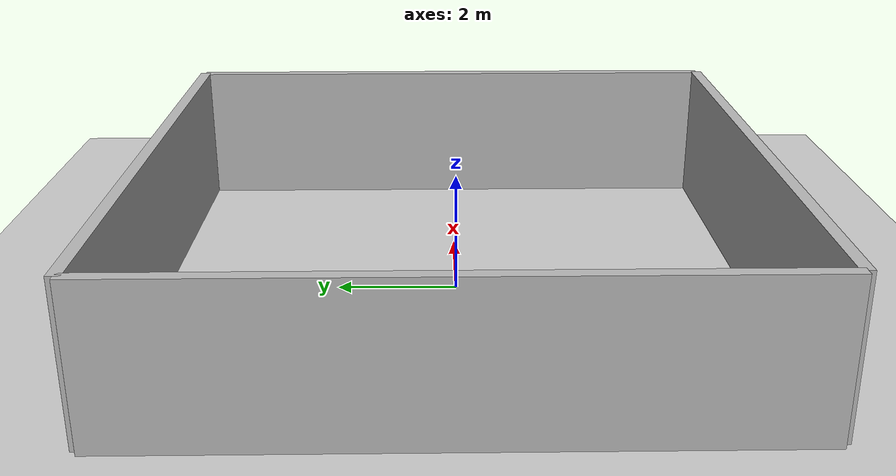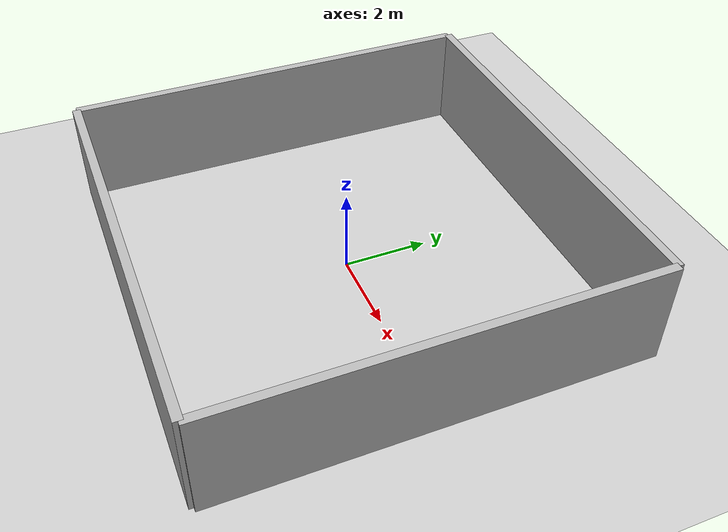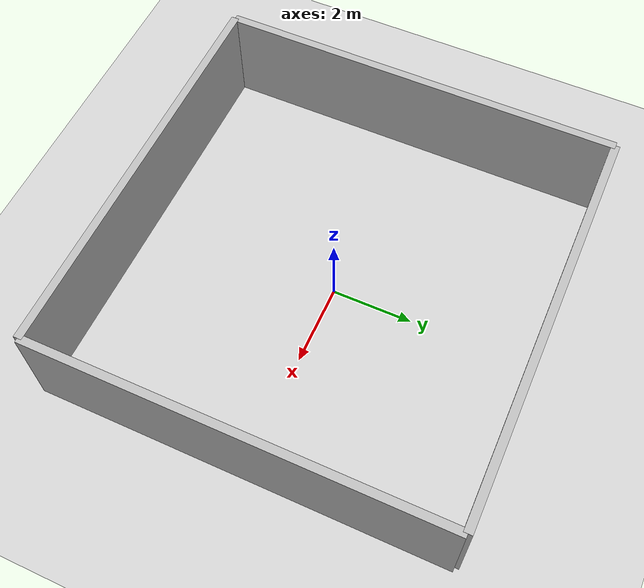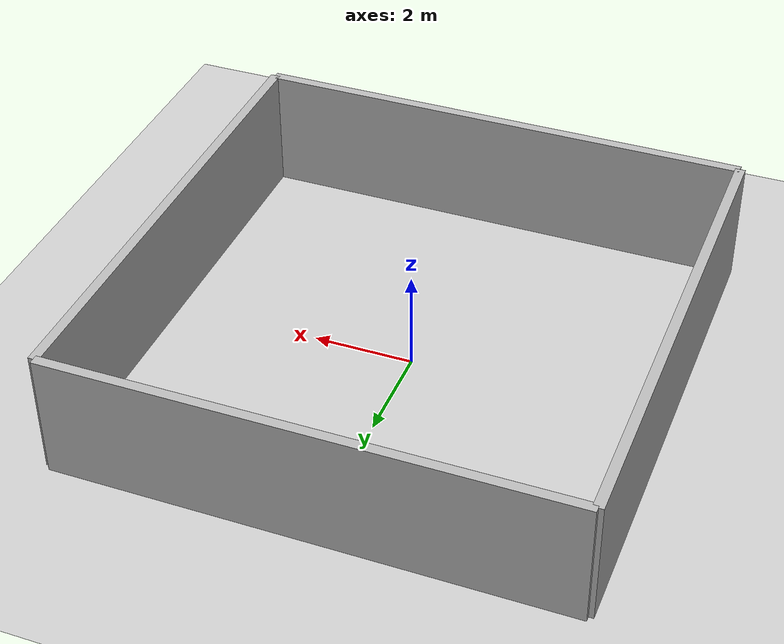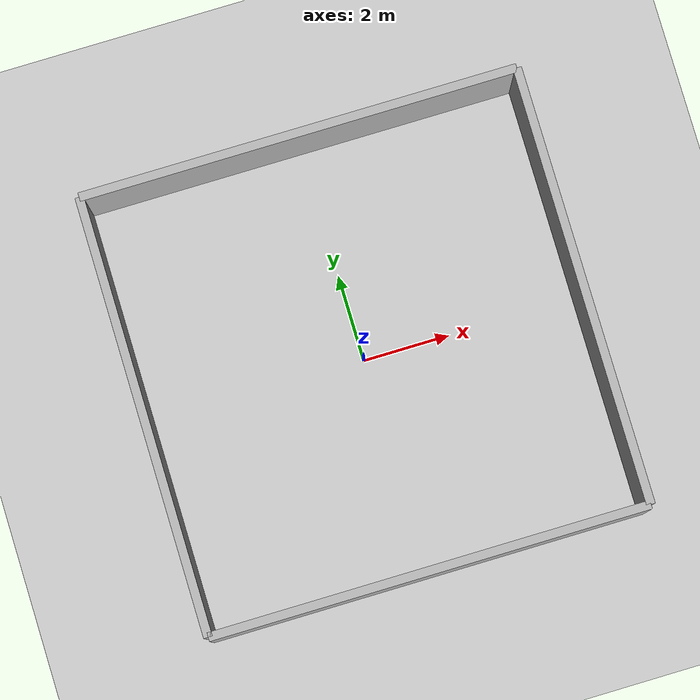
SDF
<sdf version="1.7">
 <world name="cbrn_world">
  <plugin filename="libgz-sim-physics-system.so" name="gz::sim::systems::Physics"/>
  <plugin filename="libgz-sim-scene-broadcaster-system.so" name="gz::sim::systems::SceneBroadcaster"/>
  <light type="directional" name="sun"><pose>0 0 10 0 0 0</pose></light>
  <model name="ground_plane">
   <static>true</static>
   <link name="link">
    <collision name="collision">
     <geometry><plane><normal>0 0 1</normal><size>100 100</size></plane></geometry>
    </collision>
    <visual name="visual"><geometry><plane><normal>0 0 1</normal><size>100 100</size></plane></geometry></visual>
   </link>
  </model>
  <model name="walls">
   <static>true</static>
   <pose>0 0 1.25 0 0 0</pose>
   <link name="wall_1">
    <pose>0 5 0 0 0 0</pose>
    <visual name="v"><geometry><box><size>10 0.2 2.5</size></box></geometry></visual>
    <collision name="c"><geometry><box><size>10 0.2 2.5</size></box></geometry></collision>
   </link>
   <link name="wall_2">
    <pose>0 -5 0 0 0 0</pose>
    <visual name="v"><geometry><box><size>10 0.2 2.5</size></box></geometry></visual>
    <collision name="c"><geometry><box><size>10 0.2 2.5</size></box></geometry></collision>
   </link>
   <link name="wall_3">
    <pose>5 0 0 0 0 1.57</pose>
    <visual name="v"><geometry><box><size>10 0.2 2.5</size></box></geometry></visual>
    <collision name="c"><geometry><box><size>10 0.2 2.5</size></box></geometry></collision>
   </link>
   <link name="wall_4">
    <pose>-5 0 0 0 0 1.57</pose>
    <visual name="v"><geometry><box><size>10 0.2 2.5</size></box></geometry></visual>
    <collision name="c"><geometry><box><size>10 0.2 2.5</size></box></geometry></collision>
   </link>
  </model>
 </world>
</sdf>
